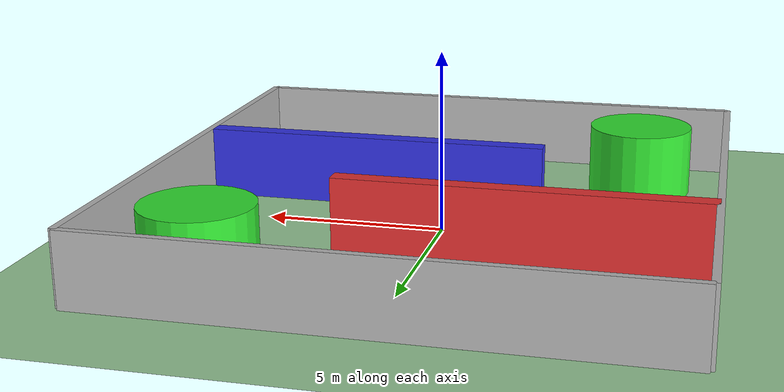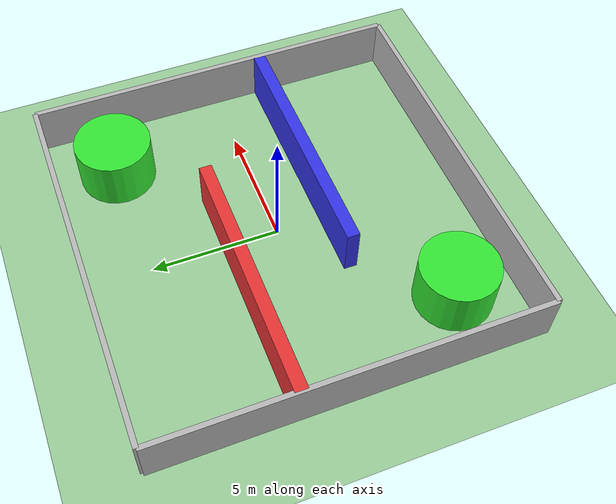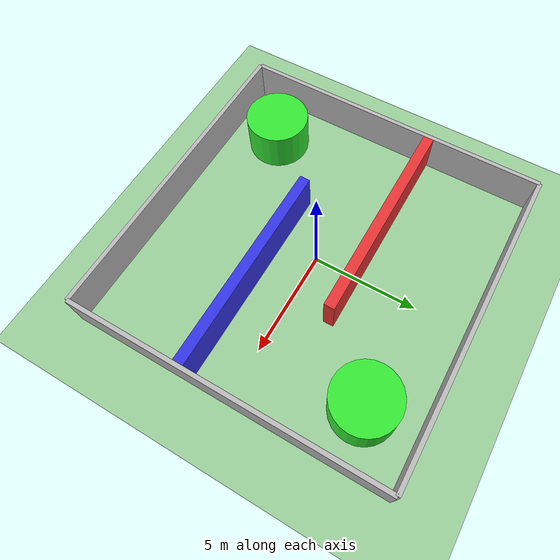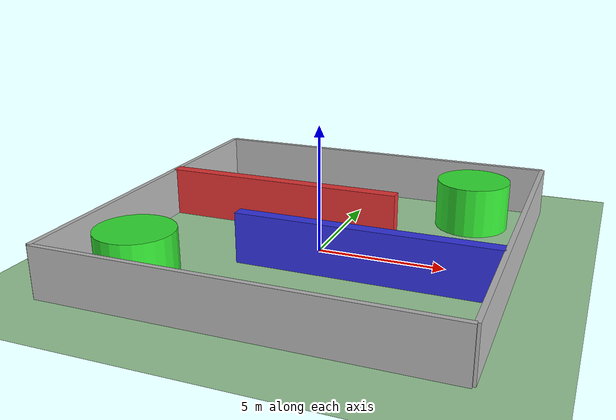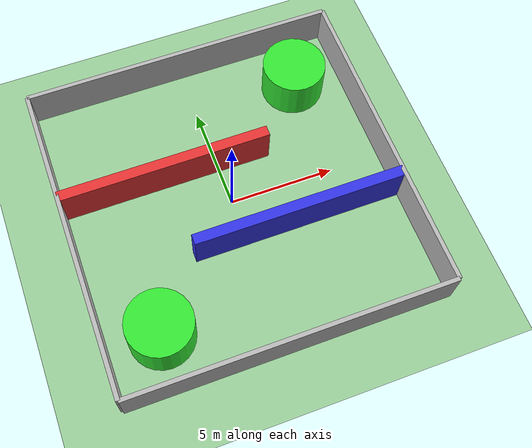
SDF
<?xml version="1.0"?>
<sdf version="1.10">
  <world name="world_3">
    <physics name="1ms" type="ignored">
      <max_step_size>0.001</max_step_size>
      <real_time_factor>1.0</real_time_factor>
    </physics>

    <plugin filename="gz-sim-physics-system" name="gz::sim::systems::Physics"/>
    <plugin filename="gz-sim-user-commands-system" name="gz::sim::systems::UserCommands"/>
    <plugin filename="gz-sim-scene-broadcaster-system" name="gz::sim::systems::SceneBroadcaster"/>
    <plugin filename="gz-sim-sensors-system" name="gz::sim::systems::Sensors">
      <render_engine>ogre2</render_engine>
    </plugin>

    <light type="directional" name="sun">
      <cast_shadows>true</cast_shadows>
      <pose>0 0 10 0 0 0</pose>
      <diffuse>0.95 0.95 0.95 1</diffuse>
      <specular>0.25 0.25 0.25 1</specular>
      <direction>-0.5 0.1 -0.9</direction>
    </light>

    <model name="ground_plane">
      <static>true</static>
      <link name="link">
        <collision name="collision">
          <geometry>
            <plane>
              <normal>0 0 1</normal>
              <size>100 100</size>
            </plane>
          </geometry>
        </collision>
        <visual name="visual">
          <geometry>
            <plane>
              <normal>0 0 1</normal>
              <size>100 100</size>
            </plane>
          </geometry>
          <material>
            <ambient>0.6 0.8 0.6 1</ambient>
            <diffuse>0.6 0.8 0.6 1</diffuse>
          </material>
        </visual>
      </link>
    </model>

    <!-- Slalom / Tight Corridor Layout -->
    <!-- Outer Walls (15x15m) -->
    <model name="outer_n"><static>true</static><pose>0 7.5 1 0 0 0</pose><link name="link"><collision name="c"><geometry><box><size>15 0.2 2</size></box></geometry></collision><visual name="v"><geometry><box><size>15 0.2 2</size></box></geometry></visual></link></model>
    <model name="outer_s"><static>true</static><pose>0 -7.5 1 0 0 0</pose><link name="link"><collision name="c"><geometry><box><size>15 0.2 2</size></box></geometry></collision><visual name="v"><geometry><box><size>15 0.2 2</size></box></geometry></visual></link></model>
    <model name="outer_w"><static>true</static><pose>-7.5 0 1 0 0 0</pose><link name="link"><collision name="c"><geometry><box><size>0.2 15 2</size></box></geometry></collision><visual name="v"><geometry><box><size>0.2 15 2</size></box></geometry></visual></link></model>
    <model name="outer_e"><static>true</static><pose>7.5 0 1 0 0 0</pose><link name="link"><collision name="c"><geometry><box><size>0.2 15 2</size></box></geometry></collision><visual name="v"><geometry><box><size>0.2 15 2</size></box></geometry></visual></link></model>

    <!-- Slalom Walls -->
    <model name="wall_1"><static>true</static><pose>-2.5 2 1 0 0 0</pose><link name="link"><collision name="c"><geometry><box><size>10 0.5 2</size></box></geometry></collision><visual name="v"><geometry><box><size>10 0.5 2</size></box></geometry><material><ambient>0.9 0.2 0.2 1</ambient><diffuse>0.9 0.2 0.2 1</diffuse></material></visual></link></model>
    <model name="wall_2"><static>true</static><pose>2.5 -2 1 0 0 0</pose><link name="link"><collision name="c"><geometry><box><size>10 0.5 2</size></box></geometry></collision><visual name="v"><geometry><box><size>10 0.5 2</size></box></geometry><material><ambient>0.2 0.2 0.9 1</ambient><diffuse>0.2 0.2 0.9 1</diffuse></material></visual></link></model>

    <!-- Extra tight passage -->
    <model name="block_1"><static>true</static><pose>5 5 1 0 0 0</pose><link name="link"><collision name="c"><geometry><cylinder><radius>1.5</radius><length>2</length></cylinder></geometry></collision><visual name="v"><geometry><cylinder><radius>1.5</radius><length>2</length></cylinder></geometry><material><ambient>0.2 0.9 0.2 1</ambient><diffuse>0.2 0.9 0.2 1</diffuse></material></visual></link></model>
    <model name="block_2"><static>true</static><pose>-5 -5 1 0 0 0</pose><link name="link"><collision name="c"><geometry><cylinder><radius>1.5</radius><length>2</length></cylinder></geometry></collision><visual name="v"><geometry><cylinder><radius>1.5</radius><length>2</length></cylinder></geometry><material><ambient>0.2 0.9 0.2 1</ambient><diffuse>0.2 0.9 0.2 1</diffuse></material></visual></link></model>

  </world>
</sdf>
